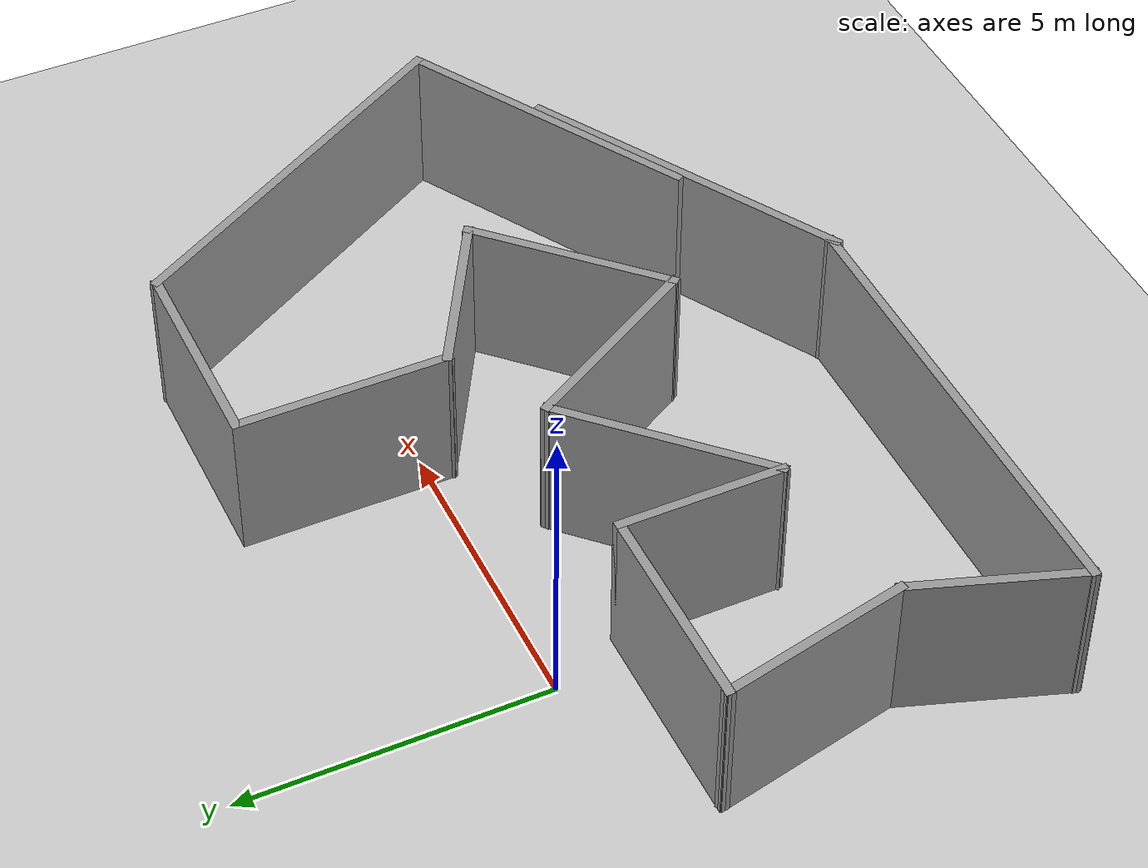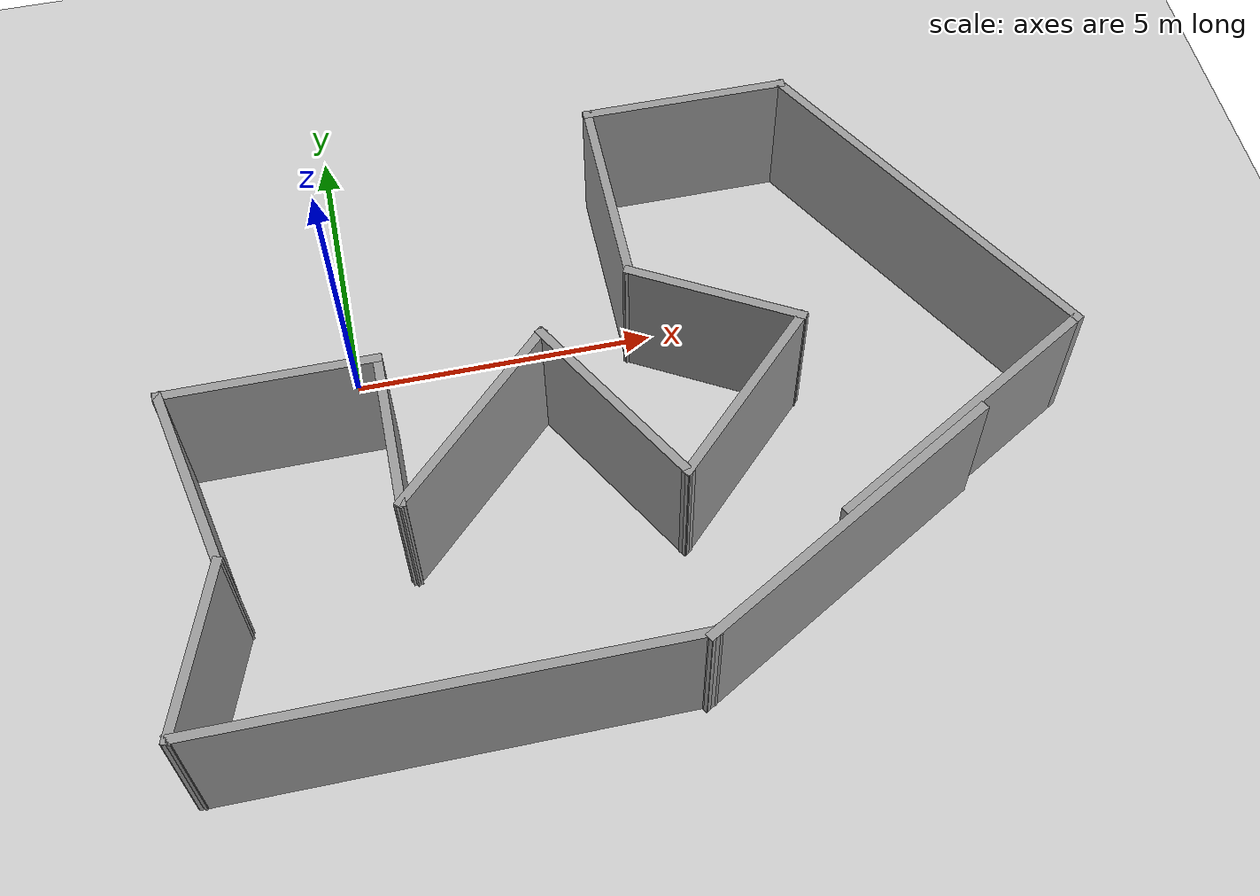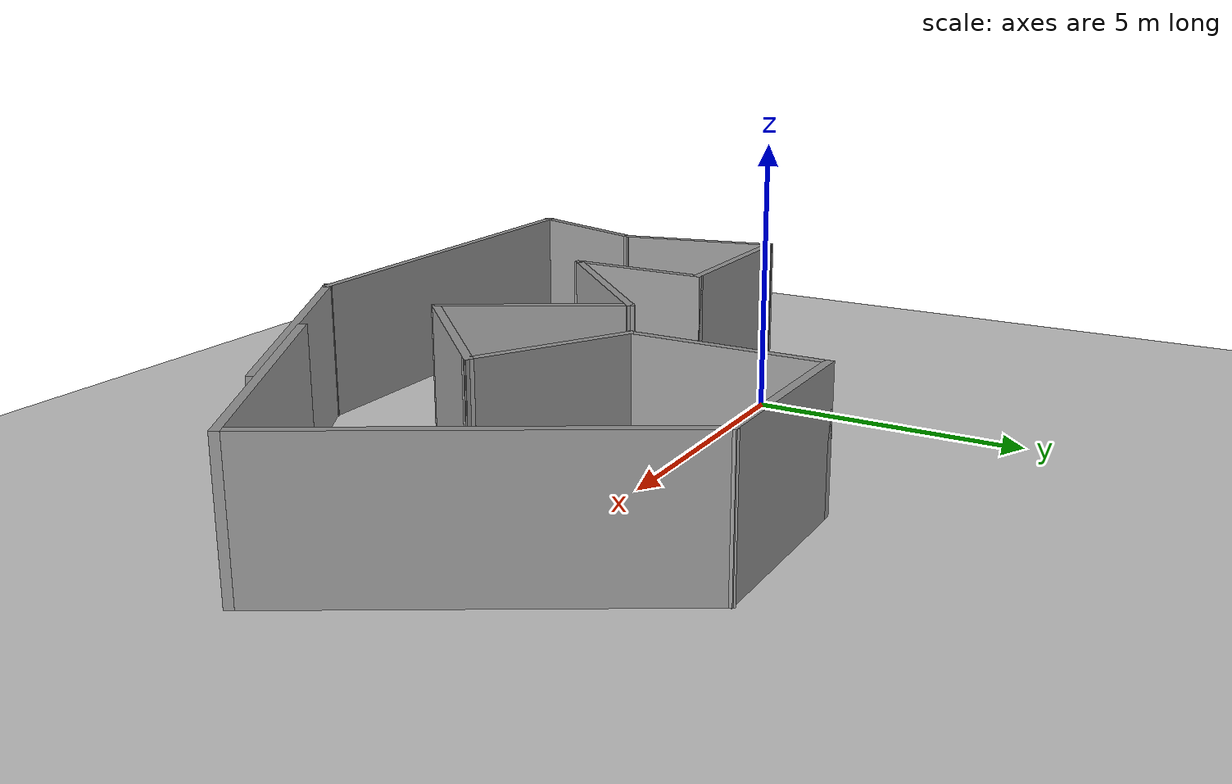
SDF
<sdf version="1.7">
 <world name="default">
  <light name="sun" type="directional">
   <pose>0 0 10 0 -0 0</pose>
   <diffuse>0.8 0.8 0.8 1</diffuse>
   <specular>0.2 0.2 0.2 1</specular>
   <attenuation>
    <range>1000</range>
    <constant>0.9</constant>
    <linear>0.01</linear>
    <quadratic>0.001</quadratic>
   </attenuation>
   <direction>-0.5 0.1 -0.9</direction>
   <spot><inner_angle>0</inner_angle><outer_angle>0</outer_angle><falloff>0</falloff></spot>
  </light>
  <model name="ground_plane">
   <static>1</static>
   <link name="link">
    <collision name="collision">
     <geometry><plane><normal>0 0 1</normal><size>100 100</size></plane></geometry>
     <surface>
      <contact><collide_bitmask>65535</collide_bitmask></contact>
      <friction><ode><mu>100</mu><mu2>50</mu2></ode></friction>
     </surface>
    </collision>
    <visual name="visual">
     <cast_shadows>0</cast_shadows>
     <geometry><plane><normal>0 0 1</normal><size>100 100</size></plane></geometry>
     <material>
      <script><uri>file://media/materials/scripts/gazebo.material</uri><name>Gazebo/Grey</name></script>
     </material>
    </visual>
   </link>
  </model>
  <gravity>0 0 -9.8</gravity>
  <magnetic_field>6e-06 2.3e-05 -4.2e-05</magnetic_field>
  <atmosphere type="adiabatic"/>
  <physics type="ode">
   <max_step_size>0.001</max_step_size>
   <real_time_factor>1</real_time_factor>
   <real_time_update_rate>1000</real_time_update_rate>
  </physics>
  <scene><ambient>0.4 0.4 0.4 1</ambient><background>0.7 0.7 0.7 1</background><shadows>1</shadows></scene>
  <spherical_coordinates>
   <surface_model>EARTH_WGS84</surface_model>
   <latitude_deg>0</latitude_deg>
   <longitude_deg>0</longitude_deg>
   <elevation>0</elevation>
   <heading_deg>0</heading_deg>
  </spherical_coordinates>
  <model name="nik.world">
   <pose>4.05971 -1.90048 0 0 -0 0</pose>
   <link name="Wall_0">
    <collision name="Wall_0_Collision">
     <geometry><box><size>3.5 0.15 2.5</size></box></geometry>
     <pose>0 0 1.25 0 -0 0</pose>
    </collision>
    <visual name="Wall_0_Visual">
     <pose>0 0 1.25 0 -0 0</pose>
     <geometry><box><size>3.5 0.15 2.5</size></box></geometry>
     <material>
      <script><uri>file://media/materials/scripts/gazebo.material</uri><name>Gazebo/Grey</name></script>
      <ambient>1 1 1 1</ambient>
     </material>
     <meta><layer>0</layer></meta>
    </visual>
    <pose>-5.27618 0.713736 0 0 -0 0</pose>
   </link>
   <link name="Wall_1">
    <collision name="Wall_1_Collision">
     <geometry><box><size>2.75 0.15 2.5</size></box></geometry>
     <pose>0 0 1.25 0 -0 0</pose>
    </collision>
    <visual name="Wall_1_Visual">
     <pose>0 0 1.25 0 -0 0</pose>
     <geometry><box><size>2.75 0.15 2.5</size></box></geometry>
     <material>
      <script><uri>file://media/materials/scripts/gazebo.material</uri><name>Gazebo/Grey</name></script>
      <ambient>1 1 1 1</ambient>
     </material>
     <meta><layer>0</layer></meta>
    </visual>
    <pose>-3.60118 -0.586264 0 0 -0 -1.5708</pose>
   </link>
   <link name="Wall_12">
    <collision name="Wall_12_Collision">
     <geometry><box><size>3.22303 0.15 2.5</size></box></geometry>
     <pose>0 0 1.25 0 -0 0</pose>
    </collision>
    <visual name="Wall_12_Visual">
     <pose>0 0 1.25 0 -0 0</pose>
     <geometry><box><size>3.22303 0.15 2.5</size></box></geometry>
     <material>
      <script><uri>file://media/materials/scripts/gazebo.material</uri><name>Gazebo/Grey</name></script>
      <ambient>1 1 1 1</ambient>
     </material>
     <meta><layer>0</layer></meta>
    </visual>
    <pose>-6.62368 -0.78747 0 0 -0 1.78559</pose>
   </link>
   <link name="Wall_14">
    <collision name="Wall_14_Collision">
     <geometry><box><size>0.240769 0.15 2.5</size></box></geometry>
     <pose>0 0 1.25 0 -0 0</pose>
    </collision>
    <visual name="Wall_14_Visual">
     <pose>0 0 1.25 0 -0 0</pose>
     <geometry><box><size>0.240769 0.15 2.5</size></box></geometry>
     <material>
      <script><uri>file://media/materials/scripts/gazebo.material</uri><name>Gazebo/Grey</name></script>
      <ambient>1 1 1 1</ambient>
     </material>
     <meta><layer>0</layer></meta>
    </visual>
    <pose>0.385813 -4.87359 0 0 -0 0.616674</pose>
   </link>
   <link name="Wall_15">
    <collision name="Wall_15_Collision">
     <geometry><box><size>7.75 0.15 2.5</size></box></geometry>
     <pose>0 0 1.25 0 -0 0</pose>
    </collision>
    <visual name="Wall_15_Visual">
     <pose>0 0 1.25 0 -0 0</pose>
     <geometry><box><size>7.75 0.15 2.5</size></box></geometry>
     <material>
      <script><uri>file://media/materials/scripts/gazebo.material</uri><name>Gazebo/Grey</name></script>
      <ambient>1 1 1 1</ambient>
     </material>
     <meta><layer>0</layer></meta>
    </visual>
    <pose>-3.37716 -4.84734 0 0 -0 3.14159</pose>
   </link>
   <link name="Wall_16">
    <collision name="Wall_16_Collision">
     <geometry><box><size>2.85608 0.15 2.5</size></box></geometry>
     <pose>0 0 1.25 0 -0 0</pose>
    </collision>
    <visual name="Wall_16_Visual">
     <pose>0 0 1.25 0 -0 0</pose>
     <geometry><box><size>2.85608 0.15 2.5</size></box></geometry>
     <material>
      <script><uri>file://media/materials/scripts/gazebo.material</uri><name>Gazebo/Grey</name></script>
      <ambient>1 1 1 1</ambient>
     </material>
     <meta><layer>0</layer></meta>
    </visual>
    <pose>-6.73667 -3.56801 0 0 -0 1.2392</pose>
   </link>
   <link name="Wall_18">
    <collision name="Wall_18_Collision">
     <geometry><box><size>3.5 0.15 2.5</size></box></geometry>
     <pose>0 0 1.25 0 -0 0</pose>
    </collision>
    <visual name="Wall_18_Visual">
     <pose>0 0 1.25 0 -0 0</pose>
     <geometry><box><size>3.5 0.15 2.5</size></box></geometry>
     <material>
      <script><uri>file://media/materials/scripts/gazebo.material</uri><name>Gazebo/Grey</name></script>
      <ambient>1 1 1 1</ambient>
     </material>
     <meta><layer>0</layer></meta>
    </visual>
    <pose>0.52004 3.22694 0 0 -0 1.5708</pose>
   </link>
   <link name="Wall_19">
    <collision name="Wall_19_Collision">
     <geometry><box><size>3.5 0.15 2.5</size></box></geometry>
     <pose>0 0 1.25 0 -0 0</pose>
    </collision>
    <visual name="Wall_19_Visual">
     <pose>0 0 1.25 0 -0 0</pose>
     <geometry><box><size>3.5 0.15 2.5</size></box></geometry>
     <material>
      <script><uri>file://media/materials/scripts/gazebo.material</uri><name>Gazebo/Grey</name></script>
      <ambient>1 1 1 1</ambient>
     </material>
     <meta><layer>0</layer></meta>
    </visual>
    <pose>2.19504 4.90194 0 0 -0 0</pose>
   </link>
   <link name="Wall_2">
    <collision name="Wall_2_Collision">
     <geometry><box><size>3.75 0.15 2.5</size></box></geometry>
     <pose>0 0 1.25 0 -0 0</pose>
    </collision>
    <visual name="Wall_2_Visual">
     <pose>0 0 1.25 0 -0 0</pose>
     <geometry><box><size>3.75 0.15 2.5</size></box></geometry>
     <material>
      <script><uri>file://media/materials/scripts/gazebo.material</uri><name>Gazebo/Grey</name></script>
      <ambient>1 1 1 1</ambient>
     </material>
     <meta><layer>0</layer></meta>
    </visual>
    <pose>-2.32839 -0.613472 0 0 -0 0.785398</pose>
   </link>
   <link name="Wall_21">
    <collision name="Wall_21_Collision">
     <geometry><box><size>6.75 0.15 2.5</size></box></geometry>
     <pose>0 0 1.25 0 -0 0</pose>
    </collision>
    <visual name="Wall_21_Visual">
     <pose>0 0 1.25 0 -0 0</pose>
     <geometry><box><size>6.75 0.15 2.5</size></box></geometry>
     <material>
      <script><uri>file://media/materials/scripts/gazebo.material</uri><name>Gazebo/Grey</name></script>
      <ambient>1 1 1 1</ambient>
     </material>
     <meta><layer>0</layer></meta>
    </visual>
    <pose>5.52004 2.04406 0 0 -0 -1.0472</pose>
   </link>
   <link name="Wall_22">
    <collision name="Wall_22_Collision">
     <geometry><box><size>5.25 0.15 2.5</size></box></geometry>
     <pose>0 0 1.25 0 -0 0</pose>
    </collision>
    <visual name="Wall_22_Visual">
     <pose>0 0 1.25 0 -0 0</pose>
     <geometry><box><size>5.25 0.15 2.5</size></box></geometry>
     <material>
      <script><uri>file://media/materials/scripts/gazebo.material</uri><name>Gazebo/Grey</name></script>
      <ambient>1 1 1 1</ambient>
     </material>
     <meta><layer>0</layer></meta>
    </visual>
    <pose>4.96167 -2.08882 0 0 -0 -2.61799</pose>
   </link>
   <link name="Wall_3">
    <collision name="Wall_3_Collision">
     <geometry><box><size>3.5 0.15 2.5</size></box></geometry>
     <pose>0 0 1.25 0 -0 0</pose>
    </collision>
    <visual name="Wall_3_Visual">
     <pose>0 0 1.25 0 -0 0</pose>
     <geometry><box><size>3.5 0.15 2.5</size></box></geometry>
     <material>
      <script><uri>file://media/materials/scripts/gazebo.material</uri><name>Gazebo/Grey</name></script>
      <ambient>1 1 1 1</ambient>
     </material>
     <meta><layer>0</layer></meta>
    </visual>
    <pose>-0.218096 -0.791272 0 0 -0 -1.0472</pose>
   </link>
   <link name="Wall_4">
    <collision name="Wall_4_Collision">
     <geometry><box><size>3.5 0.15 2.5</size></box></geometry>
     <pose>0 0 1.25 0 -0 0</pose>
    </collision>
    <visual name="Wall_4_Visual">
     <pose>0 0 1.25 0 -0 0</pose>
     <geometry><box><size>3.5 0.15 2.5</size></box></geometry>
     <material>
      <script><uri>file://media/materials/scripts/gazebo.material</uri><name>Gazebo/Grey</name></script>
      <ambient>1 1 1 1</ambient>
     </material>
     <meta><layer>0</layer></meta>
    </visual>
    <pose>1.80381 -1.05746 0 0 -0 0.785398</pose>
   </link>
   <link name="Wall_5">
    <collision name="Wall_5_Collision">
     <geometry><box><size>3 0.15 2.5</size></box></geometry>
     <pose>0 0 1.25 0 -0 0</pose>
    </collision>
    <visual name="Wall_5_Visual">
     <pose>0 0 1.25 0 -0 0</pose>
     <geometry><box><size>3 0.15 2.5</size></box></geometry>
     <material>
      <script><uri>file://media/materials/scripts/gazebo.material</uri><name>Gazebo/Grey</name></script>
      <ambient>1 1 1 1</ambient>
     </material>
     <meta><layer>0</layer></meta>
    </visual>
    <pose>1.75413 0.839443 0 0 -0 2.61799</pose>
   </link>
   <link name="Wall_9">
    <collision name="Wall_9_Collision">
     <geometry><box><size>5.75 0.15 2.5</size></box></geometry>
     <pose>0 0 1.25 0 -0 0</pose>
    </collision>
    <visual name="Wall_9_Visual">
     <pose>0 0 1.25 0 -0 0</pose>
     <geometry><box><size>5.75 0.15 2.5</size></box></geometry>
     <material>
      <script><uri>file://media/materials/scripts/gazebo.material</uri><name>Gazebo/Grey</name></script>
      <ambient>1 1 1 1</ambient>
     </material>
     <meta><layer>0</layer></meta>
    </visual>
    <pose>2.77366 -3.49984 0 0 -0 -2.61799</pose>
   </link>
   <static>1</static>
  </model>
 </world>
</sdf>
